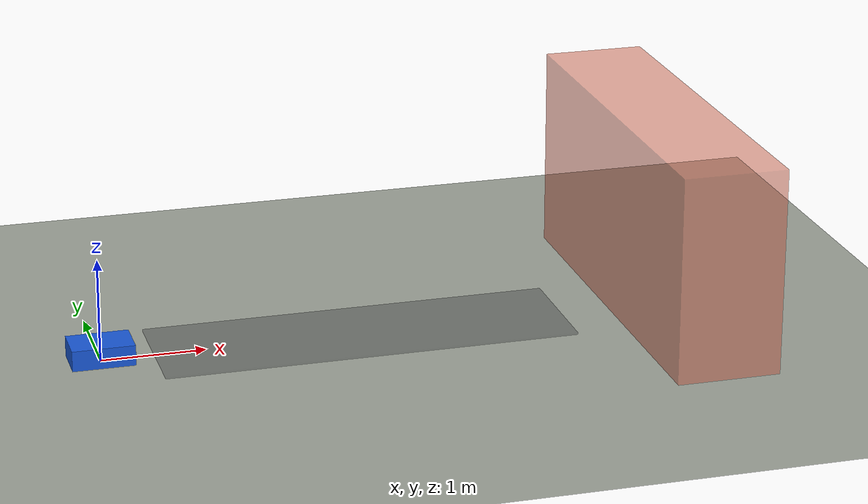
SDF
<?xml version="1.0" ?>
<sdf version="1.10">
  <world name="uav_obstacle_5m">
    <plugin filename="gz-sim-physics-system" name="gz::sim::systems::Physics"/>
    <plugin filename="gz-sim-scene-broadcaster-system" name="gz::sim::systems::SceneBroadcaster"/>
    <plugin filename="gz-sim-sensors-system" name="gz::sim::systems::Sensors">
      <render_engine>ogre2</render_engine>
    </plugin>
    <plugin filename="gz-sim-user-commands-system" name="gz::sim::systems::UserCommands"/>

    <physics name="1ms" type="ignored">
      <max_step_size>0.001</max_step_size>
      <real_time_factor>1.0</real_time_factor>
    </physics>

    <scene>
      <ambient>0.45 0.45 0.45 1</ambient>
      <background>0.74 0.78 0.82 1</background>
      <shadows>true</shadows>
    </scene>

    <light name="sun" type="directional">
      <pose>0 0 10 0 0 0</pose>
      <cast_shadows>true</cast_shadows>
      <diffuse>0.85 0.82 0.74 1</diffuse>
      <specular>0.2 0.2 0.2 1</specular>
      <direction>-0.5 0.1 -0.85</direction>
    </light>

    <model name="ground_plane">
      <static>true</static>
      <link name="link">
        <collision name="collision">
          <geometry>
            <plane>
              <normal>0 0 1</normal>
              <size>20 12</size>
            </plane>
          </geometry>
        </collision>
        <visual name="visual">
          <geometry>
            <plane>
              <normal>0 0 1</normal>
              <size>20 12</size>
            </plane>
          </geometry>
          <material>
            <ambient>0.62 0.64 0.60 1</ambient>
            <diffuse>0.62 0.64 0.60 1</diffuse>
          </material>
        </visual>
      </link>
    </model>

    <model name="uav_start_marker">
      <static>true</static>
      <pose>0 0 0.1 0 0 0</pose>
      <link name="link">
        <gravity>false</gravity>
        <collision name="collision">
          <geometry>
            <box>
              <size>0.12 0.12 0.12</size>
            </box>
          </geometry>
        </collision>
        <visual name="uav_body">
          <geometry>
            <box>
              <size>0.6 0.4 0.2</size>
            </box>
          </geometry>
          <material>
            <ambient>0.1 0.35 0.85 1</ambient>
            <diffuse>0.1 0.35 0.85 1</diffuse>
          </material>
        </visual>
        <sensor name="scan_ideal" type="gpu_lidar">
          <pose>0 0 0.02 0 0 0</pose>
          <topic>/scan_ideal</topic>
          <gz_frame_id>laser_frame</gz_frame_id>
          <update_rate>10</update_rate>
          <always_on>true</always_on>
          <visualize>false</visualize>
          <ray>
            <scan>
              <horizontal>
                <samples>361</samples>
                <resolution>1</resolution>
                <min_angle>-3.141592653589793</min_angle>
                <max_angle>3.141592653589793</max_angle>
              </horizontal>
              <vertical>
                <samples>1</samples>
                <resolution>1</resolution>
                <min_angle>0</min_angle>
                <max_angle>0</max_angle>
              </vertical>
            </scan>
            <range>
              <min>0.1</min>
              <max>12.0</max>
              <resolution>0.01</resolution>
            </range>
          </ray>
        </sensor>
      </link>
    </model>

    <model name="forward_path_marker">
      <static>true</static>
      <pose>2.5 0 0.012 0 0 0</pose>
      <link name="link">
        <visual name="path_strip">
          <geometry>
            <box>
              <size>4.0 1.2 0.02</size>
            </box>
          </geometry>
          <material>
            <ambient>0.16 0.16 0.18 0.35</ambient>
            <diffuse>0.16 0.16 0.18 0.35</diffuse>
          </material>
        </visual>
      </link>
    </model>

    <model name="obstacle_5m_ahead">
      <static>true</static>
      <pose>5.5 0 1 0 0 0</pose>
      <link name="link">
        <collision name="collision">
          <geometry>
            <box>
              <size>1 4 2</size>
            </box>
          </geometry>
        </collision>
        <visual name="visual">
          <geometry>
            <box>
              <size>1 4 2</size>
            </box>
          </geometry>
          <material>
            <ambient>0.86 0.42 0.32 0.55</ambient>
            <diffuse>0.86 0.42 0.32 0.55</diffuse>
          </material>
        </visual>
      </link>
    </model>
  </world>
</sdf>
